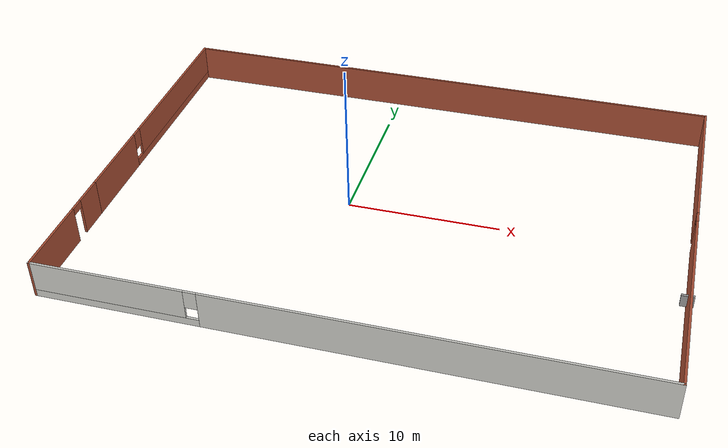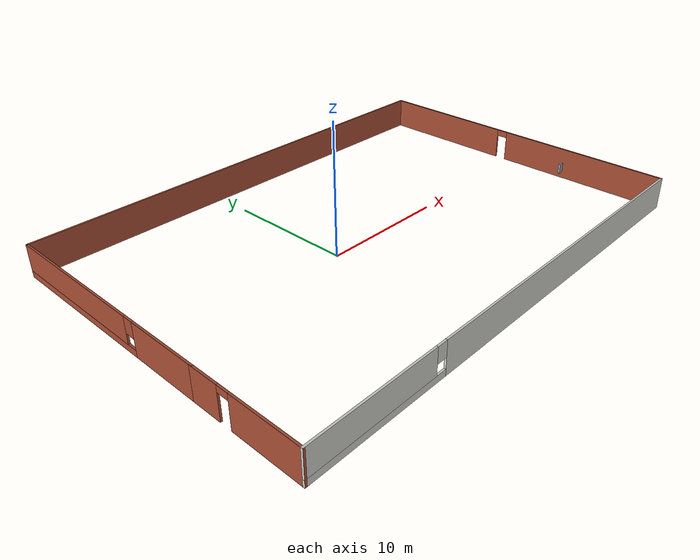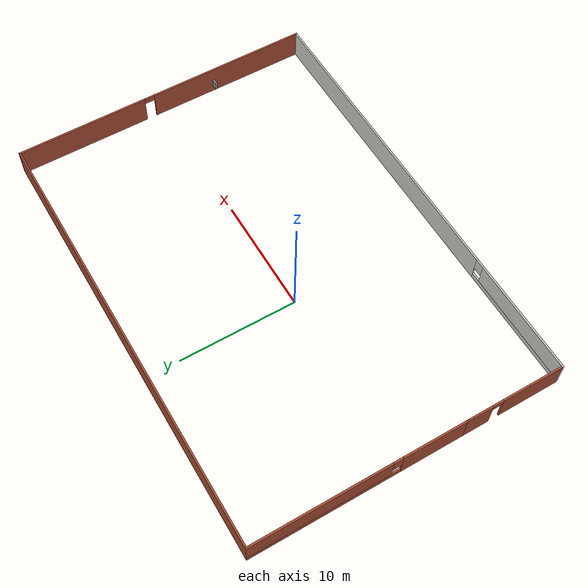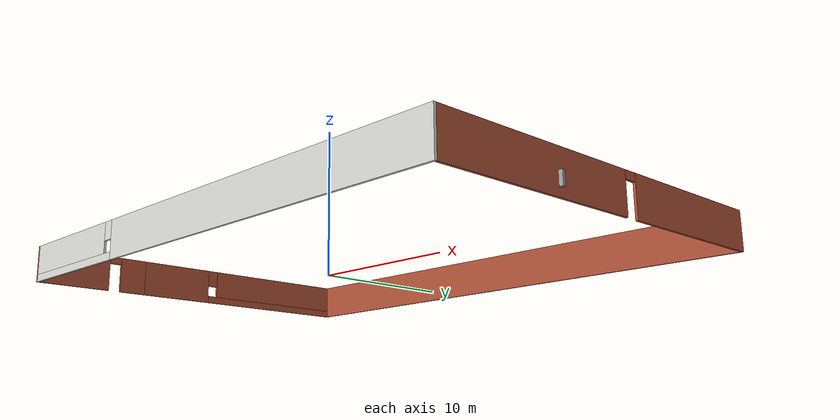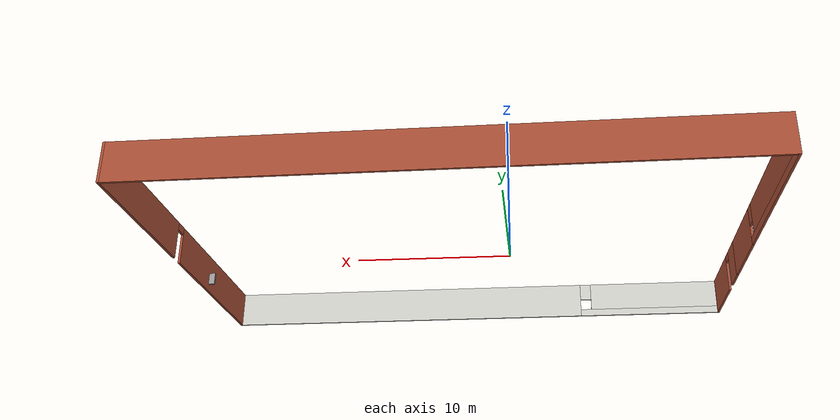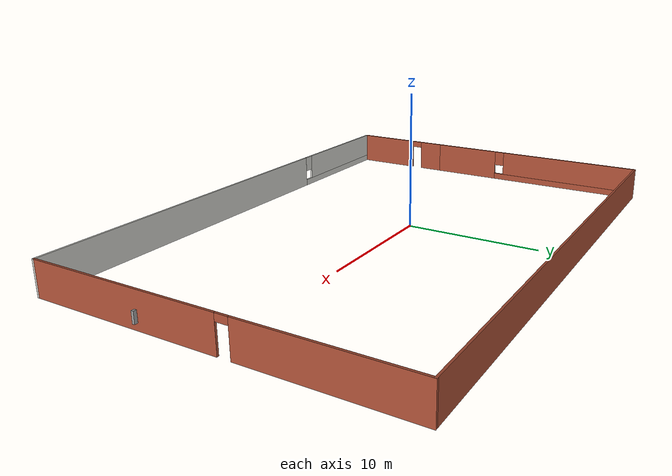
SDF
<?xml version='1.0'?>
<sdf version='1.7'>
  <model name='room_with_wall'>
    <pose>3.28978 -0.130066 0 0 -0 0</pose>
    <link name='Wall_3'>
      <pose>-18.675 4.125 0 0 -0 1.5708</pose>
      <visual name='Wall_3_Visual_0'>
        <pose>-6.20855 0 1.25 0 -0 0</pose>
        <geometry>
          <box>
            <size>5.58289 0.15 2.5</size>
          </box>
        </geometry>
        <material>
          <script>
            <uri>file://media/materials/scripts/gazebo.material</uri>
            <name>Gazebo/Bricks</name>
          </script>
          <ambient>1 1 1 1</ambient>
        </material>
        <meta>
          <layer>0</layer>
        </meta>
      </visual>
      <collision name='Wall_3_Collision_0'>
        <geometry>
          <box>
            <size>5.58289 0.15 2.5</size>
          </box>
        </geometry>
        <pose>-6.20855 0 1.25 0 -0 0</pose>
      </collision>
      <visual name='Wall_3_Visual_1'>
        <pose>2.79144 0 0.25 0 -0 0</pose>
        <geometry>
          <box>
            <size>12.4171 0.15 0.5</size>
          </box>
        </geometry>
        <material>
          <script>
            <uri>file://media/materials/scripts/gazebo.material</uri>
            <name>Gazebo/Bricks</name>
          </script>
          <ambient>1 1 1 1</ambient>
        </material>
        <meta>
          <layer>0</layer>
        </meta>
      </visual>
      <collision name='Wall_3_Collision_1'>
        <geometry>
          <box>
            <size>12.4171 0.15 0.5</size>
          </box>
        </geometry>
        <pose>2.79144 0 0.25 0 -0 0</pose>
      </collision>
      <visual name='Wall_3_Visual_2'>
        <pose>3.19144 0 1.5 0 -0 0</pose>
        <geometry>
          <box>
            <size>11.6171 0.15 2</size>
          </box>
        </geometry>
        <material>
          <script>
            <uri>file://media/materials/scripts/gazebo.material</uri>
            <name>Gazebo/Bricks</name>
          </script>
          <ambient>1 1 1 1</ambient>
        </material>
        <meta>
          <layer>0</layer>
        </meta>
      </visual>
      <collision name='Wall_3_Collision_2'>
        <geometry>
          <box>
            <size>11.6171 0.15 2</size>
          </box>
        </geometry>
        <pose>3.19144 0 1.5 0 -0 0</pose>
      </collision>
      <visual name='Wall_3_Visual_3'>
        <pose>-3.01711 0 1.9 0 -0 0</pose>
        <geometry>
          <box>
            <size>0.8 0.15 1.2</size>
          </box>
        </geometry>
        <material>
          <script>
            <uri>file://media/materials/scripts/gazebo.material</uri>
            <name>Gazebo/Bricks</name>
          </script>
          <ambient>1 1 1 1</ambient>
        </material>
        <meta>
          <layer>0</layer>
        </meta>
      </visual>
      <collision name='Wall_3_Collision_3'>
        <geometry>
          <box>
            <size>0.8 0.15 1.2</size>
          </box>
        </geometry>
        <pose>-3.01711 0 1.9 0 -0 0</pose>
      </collision>
    </link>
    <link name='Wall_4'>
      <collision name='Wall_4_Collision'>
        <geometry>
          <box>
            <size>37.5 0.15 2.5</size>
          </box>
        </geometry>
        <pose>0 0 1.25 0 -0 0</pose>
      </collision>
      <visual name='Wall_4_Visual'>
        <pose>0 0 1.25 0 -0 0</pose>
        <geometry>
          <box>
            <size>37.5 0.15 2.5</size>
          </box>
        </geometry>
        <material>
          <script>
            <uri>file://media/materials/scripts/gazebo.material</uri>
            <name>Gazebo/Bricks</name>
          </script>
          <ambient>1 1 1 1</ambient>
        </material>
        <meta>
          <layer>0</layer>
        </meta>
      </visual>
      <pose>0 13.05 0 0 -0 0</pose>
    </link>
    <link name='Wall_5'>
      <pose>18.675 0 0 0 -0 -1.5708</pose>
      <visual name='Wall_5_Visual_0'>
        <pose>-7.44851 0 1.25 0 -0 0</pose>
        <geometry>
          <box>
            <size>11.353 0.15 2.5</size>
          </box>
        </geometry>
        <material>
          <script>
            <uri>file://media/materials/scripts/gazebo.material</uri>
            <name>Gazebo/Bricks</name>
          </script>
          <ambient>1 1 1 1</ambient>
        </material>
        <meta>
          <layer>0</layer>
        </meta>
      </visual>
      <collision name='Wall_5_Collision_0'>
        <geometry>
          <box>
            <size>11.353 0.15 2.5</size>
          </box>
        </geometry>
        <pose>-7.44851 0 1.25 0 -0 0</pose>
      </collision>
      <visual name='Wall_5_Visual_1'>
        <pose>6.12649 0 1.25 0 -0 0</pose>
        <geometry>
          <box>
            <size>13.997 0.15 2.5</size>
          </box>
        </geometry>
        <material>
          <script>
            <uri>file://media/materials/scripts/gazebo.material</uri>
            <name>Gazebo/Bricks</name>
          </script>
          <ambient>1 1 1 1</ambient>
        </material>
        <meta>
          <layer>0</layer>
        </meta>
      </visual>
      <collision name='Wall_5_Collision_1'>
        <geometry>
          <box>
            <size>13.997 0.15 2.5</size>
          </box>
        </geometry>
        <pose>6.12649 0 1.25 0 -0 0</pose>
      </collision>
      <visual name='Wall_5_Visual_2'>
        <pose>-1.32202 0 2.25 0 -0 0</pose>
        <geometry>
          <box>
            <size>0.9 0.15 0.5</size>
          </box>
        </geometry>
        <material>
          <script>
            <uri>file://media/materials/scripts/gazebo.material</uri>
            <name>Gazebo/Bricks</name>
          </script>
          <ambient>1 1 1 1</ambient>
        </material>
        <meta>
          <layer>0</layer>
        </meta>
      </visual>
      <collision name='Wall_5_Collision_2'>
        <geometry>
          <box>
            <size>0.9 0.15 0.5</size>
          </box>
        </geometry>
        <pose>-1.32202 0 2.25 0 -0 0</pose>
      </collision>
    </link>
    <link name='Wall_6'>
      <pose>0 -13.05 0 0 -0 3.14159</pose>
      <visual name='Wall_6_Visual_0'>
        <pose>-5.25385 0 1.25 0 -0 0</pose>
        <geometry>
          <box>
            <size>26.9923 0.15 2.5</size>
          </box>
        </geometry>
        <material>
          <script>
            <uri>file://media/materials/scripts/gazebo.material</uri>
            <name>Gazebo/CeilingTiled</name>
          </script>
          <ambient>1 1 1 1</ambient>
        </material>
        <meta>
          <layer>0</layer>
        </meta>
      </visual>
      <collision name='Wall_6_Collision_0'>
        <geometry>
          <box>
            <size>26.9923 0.15 2.5</size>
          </box>
        </geometry>
        <pose>-5.25385 0 1.25 0 -0 0</pose>
      </collision>
      <visual name='Wall_6_Visual_1'>
        <pose>13.4962 0 0.25 0 -0 0</pose>
        <geometry>
          <box>
            <size>10.5077 0.15 0.5</size>
          </box>
        </geometry>
        <material>
          <script>
            <uri>file://media/materials/scripts/gazebo.material</uri>
            <name>Gazebo/CeilingTiled</name>
          </script>
          <ambient>1 1 1 1</ambient>
        </material>
        <meta>
          <layer>0</layer>
        </meta>
      </visual>
      <collision name='Wall_6_Collision_1'>
        <geometry>
          <box>
            <size>10.5077 0.15 0.5</size>
          </box>
        </geometry>
        <pose>13.4962 0 0.25 0 -0 0</pose>
      </collision>
      <visual name='Wall_6_Visual_2'>
        <pose>13.8962 0 1.5 0 -0 0</pose>
        <geometry>
          <box>
            <size>9.7077 0.15 2</size>
          </box>
        </geometry>
        <material>
          <script>
            <uri>file://media/materials/scripts/gazebo.material</uri>
            <name>Gazebo/CeilingTiled</name>
          </script>
          <ambient>1 1 1 1</ambient>
        </material>
        <meta>
          <layer>0</layer>
        </meta>
      </visual>
      <collision name='Wall_6_Collision_2'>
        <geometry>
          <box>
            <size>9.7077 0.15 2</size>
          </box>
        </geometry>
        <pose>13.8962 0 1.5 0 -0 0</pose>
      </collision>
      <visual name='Wall_6_Visual_3'>
        <pose>8.6423 0 1.9 0 -0 0</pose>
        <geometry>
          <box>
            <size>0.8 0.15 1.2</size>
          </box>
        </geometry>
        <material>
          <script>
            <uri>file://media/materials/scripts/gazebo.material</uri>
            <name>Gazebo/CeilingTiled</name>
          </script>
          <ambient>1 1 1 1</ambient>
        </material>
        <meta>
          <layer>0</layer>
        </meta>
      </visual>
      <collision name='Wall_6_Collision_3'>
        <geometry>
          <box>
            <size>0.8 0.15 1.2</size>
          </box>
        </geometry>
        <pose>8.6423 0 1.9 0 -0 0</pose>
      </collision>
    </link>
    <link name='Wall_7'>
      <pose>-18.675 -8.875 0 0 -0 1.5708</pose>
      <visual name='Wall_7_Visual_0'>
        <pose>-1.58001 0 1.25 0 -0 0</pose>
        <geometry>
          <box>
            <size>5.33999 0.15 2.5</size>
          </box>
        </geometry>
        <material>
          <script>
            <uri>file://media/materials/scripts/gazebo.material</uri>
            <name>Gazebo/Bricks</name>
          </script>
          <ambient>1 1 1 1</ambient>
        </material>
        <meta>
          <layer>0</layer>
        </meta>
      </visual>
      <collision name='Wall_7_Collision_0'>
        <geometry>
          <box>
            <size>5.33999 0.15 2.5</size>
          </box>
        </geometry>
        <pose>-1.58001 0 1.25 0 -0 0</pose>
      </collision>
      <visual name='Wall_7_Visual_1'>
        <pose>3.11999 0 1.25 0 -0 0</pose>
        <geometry>
          <box>
            <size>2.26001 0.15 2.5</size>
          </box>
        </geometry>
        <material>
          <script>
            <uri>file://media/materials/scripts/gazebo.material</uri>
            <name>Gazebo/Bricks</name>
          </script>
          <ambient>1 1 1 1</ambient>
        </material>
        <meta>
          <layer>0</layer>
        </meta>
      </visual>
      <collision name='Wall_7_Collision_1'>
        <geometry>
          <box>
            <size>2.26001 0.15 2.5</size>
          </box>
        </geometry>
        <pose>3.11999 0 1.25 0 -0 0</pose>
      </collision>
      <visual name='Wall_7_Visual_2'>
        <pose>1.53999 0 2.25 0 -0 0</pose>
        <geometry>
          <box>
            <size>0.9 0.15 0.5</size>
          </box>
        </geometry>
        <material>
          <script>
            <uri>file://media/materials/scripts/gazebo.material</uri>
            <name>Gazebo/Bricks</name>
          </script>
          <ambient>1 1 1 1</ambient>
        </material>
        <meta>
          <layer>0</layer>
        </meta>
      </visual>
      <collision name='Wall_7_Collision_2'>
        <geometry>
          <box>
            <size>0.9 0.15 0.5</size>
          </box>
        </geometry>
        <pose>1.53999 0 2.25 0 -0 0</pose>
      </collision>
    </link>
    <link name='Window_1'>
      <collision name='Window_1_Collision'>
        <geometry>
          <box>
            <size>0.8 0.17 0.8</size>
          </box>
        </geometry>
        <pose>0 0 0.4 0 -0 0</pose>
      </collision>
      <visual name='Window_1_Visual'>
        <pose>0 0 0.4 0 -0 0</pose>
        <geometry>
          <box>
            <size>0.8 0.17 0.8</size>
          </box>
        </geometry>
        <material>
          <script>
            <uri>file://media/materials/scripts/gazebo.material</uri>
            <name>Gazebo/Grey</name>
          </script>
        </material>
      </visual>
      <pose>18.5905 -4.74613 0.5 0 -0 0</pose>
    </link>
    <static>1</static>
  </model>
</sdf>
